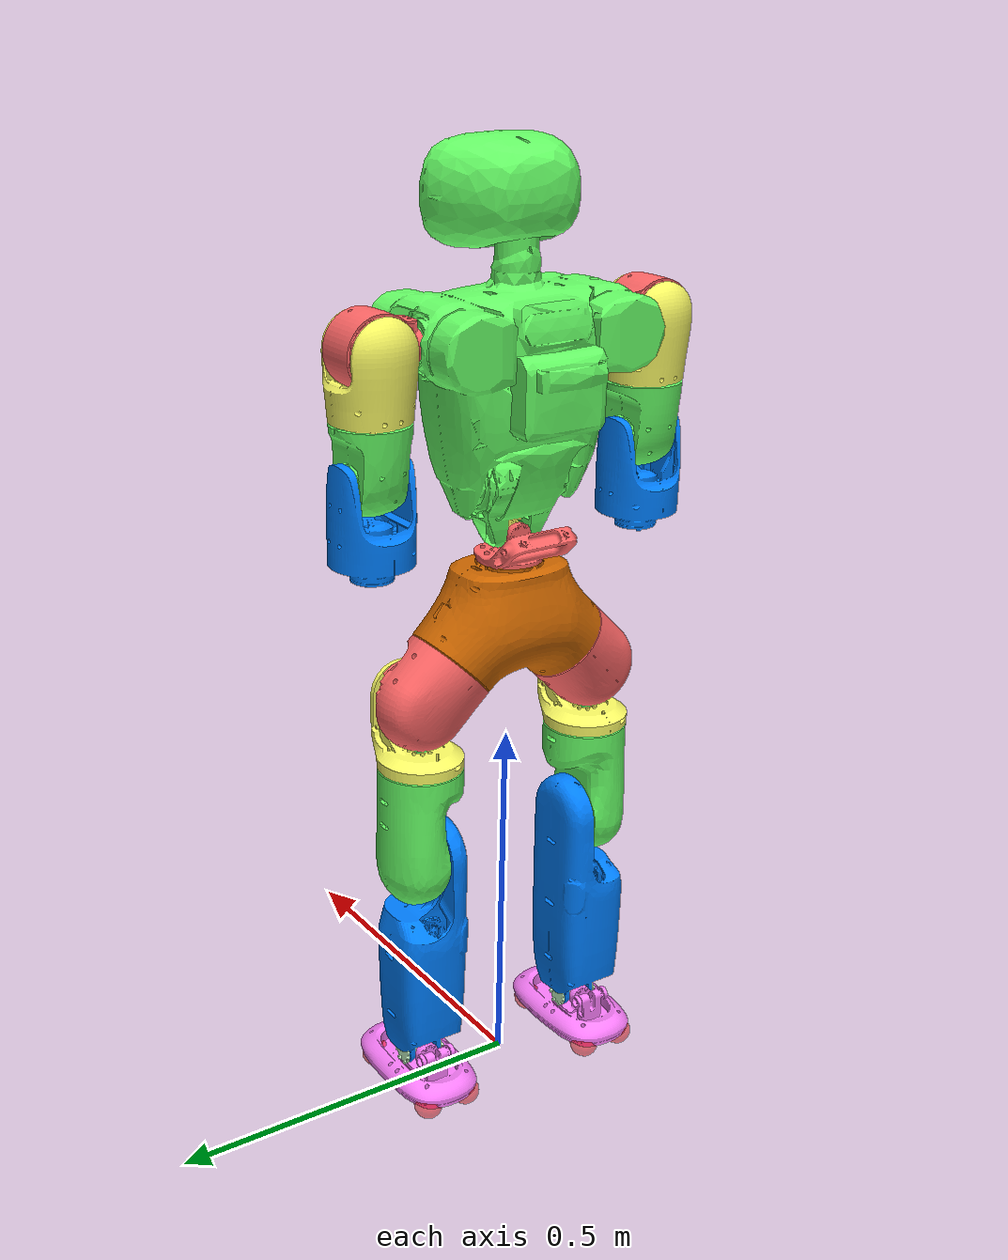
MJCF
<mujoco model="zhiyuan scene">
  <compiler angle='radian' eulerseq="XYZ" meshdir="meshes/"
    autolimits="true" />

  <option timestep="0.001" />

  <visual>
    <global azimuth="150" elevation="-20" />
    <headlight ambient="0.3 0.3 0.3" diffuse="0.6 0.6 0.6" specular="0 0 0" />
    <scale forcewidth="0.03" contactwidth="0.01" contactheight="0.02" com="1" framelength="0.6"
      framewidth="0.05" />
    <rgba haze="0.15 0.25 0.35 1" com="0.502 1 0 0.5" contactpoint="1 1 0.6 0.4"
      contactforce="0.98 0.4 0.4 1" />
  </visual>
  <default>
      <geom contype = "0" conaffinity = "0" solref = "0.005 1" condim = "3" friction = "1 1" />
      <equality solref = "0.005 1" />
      <default class = "zhiyuan">
      </default>
      <default class = "collision">
          <geom contype = "1" group = "3" type = "capsule" />
          <default class = "collision-left">
              <geom contype = "2" conaffinity = "4" />
          </default>
          <default class = "collision-right">
              <geom contype = "4" conaffinity = "2" />
          </default>
      </default>
    </default>
  <asset>
    <mesh name="base_link_simple" file="base_link_simple.STL" />

    <mesh name="body_yaw" file="lumber_yaw.STL" />
    <mesh name="body_roll" file="lumber_roll.STL" />
    <mesh name="body_pitch" file="lumber_pitch.STL" />

    <mesh name="left_shoulder_pitch" file="left_shoulder_pitch.STL" />
    <mesh name="left_shoulder_roll" file="left_shoulder_roll.STL" />
    <mesh name="left_shoulder_yaw" file="left_shoulder_yaw.STL" />
    <mesh name="left_elbow_pitch" file="left_elbow_pitch.STL" />
    <mesh name="left_elbow_yaw" file="left_elbow_yaw.STL" />
    <mesh name="left_wrist_pitch" file="left_wrist_pitch.STL" />
    <mesh name="left_wrist_roll" file="left_wrist_roll.STL" />

    <mesh name="right_shoulder_pitch" file="right_shoulder_pitch.STL" />
    <mesh name="right_shoulder_roll" file="right_shoulder_roll.STL" />
    <mesh name="right_shoulder_yaw" file="right_shoulder_yaw.STL" />
    <mesh name="right_elbow_pitch" file="right_elbow_pitch.STL" />
    <mesh name="right_elbow_yaw" file="right_elbow_yaw.STL" />
    <mesh name="right_wrist_pitch" file="right_wrist_pitch.STL" />
    <mesh name="right_wrist_roll" file="right_wrist_roll.STL" />

    <mesh name="left_hip_pitch" file="left_hip_pitch.STL" />
    <mesh name="left_hip_roll" file="left_hip_roll.STL" />
    <mesh name="left_hip_yaw" file="left_hip_yaw.STL" />
    <mesh name="left_knee_pitch" file="left_knee_pitch.STL" />
    <mesh name="left_ankle_pitch" file="left_ankle_pitch.STL" />
    <mesh name="left_ankle_roll" file="left_ankle_roll.STL" />

    <mesh name="right_hip_pitch" file="right_hip_pitch.STL" />
    <mesh name="right_hip_roll" file="right_hip_roll.STL" />
    <mesh name="right_hip_yaw" file="right_hip_yaw.STL" />
    <mesh name="right_knee_pitch" file="right_knee_pitch.STL" />
    <mesh name="right_ankle_pitch" file="right_ankle_pitch.STL" />
    <mesh name="right_ankle_roll" file="right_ankle_roll.STL" />
  </asset>
  <worldbody>
    <body name = "base_link" pos = "0 0 0.63">
      <inertial pos="0.00252285 -0.00063439 0.03023409" mass="4.3041648" fullinertia="0.02680559 0.01083128 0.02180955 -5.49e-06 5.389e-05  -0.00011229 "/>
      <freejoint name="floating_base"/>
      <geom type="mesh" rgba="0.8 0.4 0 1" mesh="base_link_simple" />
      <geom type="mesh" rgba="0.8 0.4 0 1" mesh="base_link_simple" class = "collision"/>
      <camera name="track" pos="0 -3 1" quat="0.850651 0.525731 0 0" mode="track" />
      <site name = "imu" size = "0.01" pos = "0 0 0" />

      <body name="lumber_yaw_link" pos="0.00245 0 0.115534" quat="1 0 0 -2.27456e-05">
        <inertial pos="-0.0180007 1.4e-06 0.0243298" quat="-7.72625e-06 0.78309 -2.54549e-05 0.621909" mass="0.362519" diaginertia="0.000655093 0.00045823 0.000342457"/>
        <joint name="lumber_yaw_joint" type="hinge" pos="0 0 0" axis="0 0 1" damping="1" range="-3.14 3.14" />
        <geom type='mesh' mesh='body_yaw' pos='0 0 0' euler='-0 0 -0' rgba="1 0.4 0.4 1" />

        <body name="lumber_roll_link" pos="0 0 0.0405" quat="0.5 0.5 -0.5 -0.5">
          <inertial pos="-0.00029919 0.0003642 -0.00019197" quat="0.773215 -0.138631 -0.0225684 0.618394" mass="0.0341207" diaginertia="5.46439e-06 4.90308e-06 4.81253e-06"/>
          <joint name="lumber_roll_joint" type="hinge" pos="0 0 0" axis="1 0 0" damping="1" range="-3.14 3.14" />
          <geom type='mesh' mesh='body_roll' pos='0 0 0' euler='-0 0 -0' rgba="1 1 0.4 1"/>

          <body name="lumber_pitch_link" pos="0 0 0" quat="0.707107 0 0.707107 0">
            <inertial pos="-0.000617851 0.206789 -0.00114246" quat="0.70235 0.7111 -0.0266182 -0.0182289" mass="9.08107" diaginertia="0.154848 0.118223 0.0621153"/>
            <joint name="lumber_pitch_joint" type="hinge" pos="0 0 0" axis="0 1 0" damping="1" range="-3.14 3.14" />
            <geom type='mesh' mesh='body_pitch' pos='0 0 0' rgba="0.4 1 0.4 1" />
            <geom type='mesh' mesh='body_pitch' pos='0 0 0' rgba="0.4 1 0.4 1" class="collision"/>

            <body name="left_shoulder_pitch_link" pos="0 0.256 -0.1458" quat="0 0 0 -1" gravcomp="0">
              <inertial pos="-0.00251212 -0.00149141 -0.0567447" quat="0.995975 -0.00474479 -0.0345991 0.0825443" mass="1.00679" diaginertia="0.00108562 0.000958162 0.000853398"/>
              <joint name="left_shoulder_pitch_joint" type="hinge" pos="0 0 0" axis="0 0 -1" damping="1" range="-3.14 3.14" />
              <geom type='mesh' mesh='left_shoulder_pitch' pos='0 0 0' euler='-0 0 -0'
                rgba="1 0.4 0.4 1" />

              <body name="left_shoulder_roll_link" pos="-0.0313 0 -0.0592" quat="0.707105 0 -0.707108 0" gravcomp="0">
                <inertial pos="0.000154 0.0778464 -0.0271134" quat="0.765297 0.643563 -0.00747942 0.00959688" mass="0.691695" diaginertia="0.00133677 0.00119611 0.000636982"/>
                <joint name="left_shoulder_roll_joint" type="hinge" pos="0 0 0" axis="0 0 -1" damping="1" range="-3.14 3.14" />
                <geom type='mesh' mesh='left_shoulder_roll' pos='0 0 0' euler='-0 0 -0'
                  rgba="1 1 0.4 1" />

                <body name="left_shoulder_yaw_link" pos="0 0.1252 -0.0313" quat="0.5 0.5 0.5 -0.5" gravcomp="0">
                  <inertial pos="-2.68e-06 0.00182113 -0.00392718" quat="0.695603 -0.0321904 0.0318975 0.716996" mass="0.725594" diaginertia="0.00118335 0.00116041 0.000481204"/>
                  <joint name="left_shoulder_yaw_joint" type="hinge" pos="0 0 0" axis="0 0 -1" damping="1" range="-3.14 3.14" />
                  <geom type='mesh' mesh='left_shoulder_yaw' pos='0 0 0' euler='-0 0 -0'
                    rgba="0.4 1 0.4 1" />

                  <body name="left_elbow_pitch_link" pos="0 -0.031 -0.0365" quat="0.707107 -0.707107 0 0" gravcomp="0">
                    <inertial pos="2.604e-05 0.0752824 0.0268658" quat="0.597053 0.802202 -2.17373e-05 0.000362389" mass="0.697801" diaginertia="0.00116267 0.00100065 0.000614359"/>
                    <joint name="left_elbow_pitch_joint" type="hinge" pos="0 0 0" axis="0 0 -1" damping="1" range="-1.0472 2.0944" />
                    <geom type='mesh' mesh='left_elbow_pitch' pos='0 0 0' euler='-0 0 -0'
                      rgba="0 0.5 1 1" />

                  </body>
                </body>
              </body>
            </body>

            <body name="right_shoutlder_pitch_link" pos="0 0.256 0.1458" quat="-3.67321e-06 1 0 0" gravcomp="0">
              <inertial pos="0.00250704 -0.00149173 -0.0567433" quat="0.995977 -0.00568417 0.0346063 -0.0824611" mass="1.00679" diaginertia="0.00108562 0.000958168 0.000853396"/>
              <joint name="right_shoulder_pitch_joint" type="hinge" pos="0 0 0" axis="0 0 1" damping="1" range="-3.14 3.14" />
              <geom type='mesh' mesh='right_shoulder_pitch' pos='0 0 0' euler='-0 0 -0'
                rgba="1 0.4 0.4 1" />

              <body name="right_shoulder_roll_link" pos="0.0313 0 -0.0592" quat="-2.59734e-06 0.707105 2.59735e-06 0.707108" gravcomp="0">
                <inertial pos="9.998e-05 -0.0778724 -0.0270563" quat="0.64355 0.765355 0.0062383 -0.00599871" mass="0.691426" diaginertia="0.00133761 0.00119704 0.000636294"/>
                <joint name="right_shoulder_roll_joint" type="hinge" pos="0 0 0" axis="0 0 1" damping="1" range="-3.14 3.14" />
                <geom type='mesh' mesh='right_shoulder_roll' pos='0 0 0' euler='-0 0 -0'
                  rgba="1 1 0.4 1" />

                <body name="right_shoulder_yaw_link" pos="0 -0.1252 -0.0313" quat="0.707105 0.707108 0 0" gravcomp="0">
                  <inertial pos="-0.00189082 -0.00017102 0.0317511" quat="0.694675 -0.204745 -0.19648 0.660985" mass="0.604503" diaginertia="0.000550567 0.000505158 0.000491905"/>
                  <joint name="right_shoulder_yaw_joint" type="hinge" pos="0 0 0" axis="0 0 1" damping="1" range="-3.14 3.14" />
                  <geom type='mesh' mesh='right_shoulder_yaw' pos='0 0 0' euler='-0 0 -0'
                    rgba="0.4 1 0.4 1" />

                  <body name="right_elbow_pitch_link" pos="-0.031 0 0.0365" quat="0.5 -0.5 0.5 -0.5" gravcomp="0">
                    <inertial pos="-2.604e-05 -0.0752983 0.0268563" quat="0.802034 0.597278 0.000362597 -2.24278e-05" mass="0.697801" diaginertia="0.00116302 0.00100116 0.000614171"/>
                    <joint name="right_elbow_pitch_joint" type="hinge" pos="0 0 0" axis="0 0 1" damping="1" range="-1.0472 2.0944" />
                    <geom type='mesh' mesh='right_elbow_pitch' pos='0 0 0' euler='-0 0 -0'
                      rgba="0 0.5 1 1" />

                  </body>
                </body>
              </body>
            </body>
          </body>
        </body>
      </body>

      <body name="left_hip_pitch_link" pos="0.00245 0.092277 -0.012143" quat="0.65328 0.270599 -0.270598 0.653282" gravcomp="0">
        <inertial pos="-4.816e-05 -0.0107584 -0.0540778" quat="0.701067 -0.0888726 0.120485 0.697202" mass="1.67336" diaginertia="0.00256418 0.00234466 0.00215142"/>
        <joint name="left_hip_pitch_joint" type='hinge' pos="0 0 0" axis="0 0 1" damping='1'
          range="-3.14 3.14" />
        <geom type='mesh' mesh='left_hip_pitch' pos='0 0 0' euler='-0 0 -0' rgba="1 0.4 0.4 1"
        />

        <body name="left_hip_roll_link" pos="0 -0.0405 -0.0589" quat="0.653281 0.653281 0.270598 -0.270598" gravcomp="0">
          <inertial pos="0.00014604 -0.0412348 -0.0101534" quat="0.30122 0.638429 -0.639374 0.304757" mass="0.285622" diaginertia="0.000612958 0.000557294 0.000275288"/>
          <joint name="left_hip_roll_joint" type='hinge' pos="0 0 0" axis="0 0 -1"
            damping='1'
            range="-3.14 3.14" />
          <geom type='mesh' mesh='left_hip_roll' pos='0 0 0' euler='-0 0 -0' rgba="1 1 0.4 1"
          />

          <body name="left_hip_yaw_link" pos="0 -0.0838049 -0.0406" quat="0.707107 0.707107 0 0" gravcomp="0">
            <inertial pos="-0.00212295 -3.062e-05 0.0916484" quat="0.999467 0.000387515 -0.0324521 -0.0035558" mass="2.73696" diaginertia="0.0127474 0.0124495 0.00338744"/>
            <joint name="left_hip_yaw_joint" type='hinge' pos="0 0 0" axis="0 0 -1"
              damping='1'
              range="-3.14 3.14" />
            <geom type='mesh' mesh='left_hip_yaw' pos='0 0 0' euler='-0 0 -0'
              rgba="0.4 1 0.4 1" />

            <body name="left_knee_pitch_link" pos="-0.0337 0 0.1422" quat="0.5 -0.5 0.5 -0.5" gravcomp="0">
              <inertial pos="-0.000466573 -0.136803 0.0283565" quat="0.549096 0.504801 -0.427727 0.510606" mass="1.68649" diaginertia="0.00989796 0.00939201 0.00196477"/>
              <joint name="left_knee_pitch_joint" type='hinge' pos="0 0 0" axis="0 0 1" damping='1'
                range="-3.14 3.14" />
              <geom type='mesh' mesh='left_knee_pitch' pos='0 0 0' euler='-0 0 -0' rgba="0 0.5 1 1"
              />

              <body name="left_ankle_pitch_link" pos="0 -0.30494 0.0336" quat="0 0 -1 0" gravcomp="0">
                <inertial pos="-2.32e-06 7.077e-05 -2.048e-05" quat="0.707107 0 0 0.707107" mass="0.0621721" diaginertia="2.373e-05 2.273e-05 6.68e-06"/>
                <joint name="left_ankle_pitch_joint" type='hinge' pos="0 0 0" axis="0 0 -1"
                  damping='1'
                  range="-3.14 3.14" />
                <geom type='mesh' mesh='left_ankle_pitch' pos='0 0 0' euler='-0 0 -0'
                  rgba="0.8 1.0 0.8 1" />

                <body name="left_ankle_roll_link" pos="0 0 0" quat="0.707107 0 0.707107 0" gravcomp="0">
                  <inertial pos="0.00017156 -0.025247 -0.00019936" quat="0.707585 0.0111979 -0.0139853 0.706401" mass="0.589712" diaginertia="0.00190069 0.00152114 0.000541391"/>
                  <joint name="left_ankle_roll_joint" type='hinge' pos="0 0 0" axis="0 0 1"
                    damping='1'
                    range="-3.14 3.14" />
                  <geom type='mesh' mesh='left_ankle_roll' pos='0 0 0' euler='-0 0 -0'
                    rgba="1 0.5 1 1" />
                  <geom type = "sphere" size = "0.002" pos = "0.03 -0.0408 0.07" class = "collision"  />
                  <geom type = "sphere" size = "0.002" pos = "-0.03 -0.0408 0.07" class = "collision"  />
                  <geom type = "sphere" size = "0.002" pos = "0.03 -0.0408 -0.07" class = "collision"  />
                  <geom type = "sphere" size = "0.002" pos = "-0.03 -0.0408 -0.07" class = "collision"  />
                  <geom type = "sphere" size = "0.02" pos = "0.03 -0.0408 0.07" rgba = "255 0 0 0.5"  />
                  <geom type = "sphere" size = "0.02" pos = "-0.03 -0.0408 0.07" rgba = "255 0 0 0.5"  />
                  <geom type = "sphere" size = "0.02" pos = "0.03 -0.0408 -0.07" rgba = "255 0 0 0.5"  />
                  <geom type = "sphere" size = "0.02" pos = "-0.03 -0.0408 -0.07" rgba = "255 0 0 0.5"  />
                </body>
              </body>
            </body>
          </body>
        </body>
      </body>

      <body name="right_hip_pitch_link" pos="0.00245 -0.092277 -0.012143" quat="0.65328 -0.270599 -0.270598 -0.653282" gravcomp="0">
        <inertial pos="-0.00011915 0.0106148 -0.0540773" quat="0.704635 0.117558 -0.0919818 0.693692" mass="1.66657" diaginertia="0.00254519 0.00232121 0.00213313"/>
        <joint name="right_hip_pitch_joint" type='hinge' pos="0 0 0" axis="0 0 1"
          damping='1'
          range="-3.14 3.14" />
        <geom type='mesh' mesh='right_hip_pitch' pos='0 0 0' euler='-0 0 -0'
          rgba="1 0.4 0.4 1" />

        <body name="right_hip_roll_link" pos="0 0.0405 -0.0589" quat="0.653281 0.653281 0.270598 -0.270598" gravcomp="0">
          <inertial pos="-0.00027058 -0.0416462 0.0103426" quat="0.633195 0.29395 -0.315414 0.642785" mass="0.287688" diaginertia="0.000626566 0.000566795 0.000280389"/>
          <joint name="right_hip_roll_joint" type='hinge' pos="0 0 0" axis="0 0 1"
            damping='1'
            range="-3.14 3.14" />
          <geom type='mesh' mesh='right_hip_roll' pos='0 0 0' euler='-0 0 -0' rgba="1 1 0.4 1"
          />

          <body name="right_hip_yaw_link" pos="0 -0.0777549 0.0406" quat="0.7071 -0.7071 -0.00304418 0.00304418" gravcomp="0">
            <inertial pos="-0.00241642 1.672e-05 -0.097047" quat="0.999478 -0.000259753 0.0322929 -0.00102692" mass="2.69635" diaginertia="0.0125794 0.0122506 0.00332533"/>
            <joint name="right_hip_yaw_joint" type='hinge' pos="0 0 0" axis="0 0 1"
              damping='1'
              range="-3.14 3.14" />
            <geom type='mesh' mesh='right_hip_yaw' pos='0 0 0' euler='-0 0 -0'
              rgba="0.4 1 0.4 1" />

            <body name="right_knee_pitch_link" pos="-0.0347752 0 -0.147956" quat="0.497843 0.502148 0.502148 0.497843" gravcomp="0">
              <inertial pos="0.000491832 -0.13745 0.0283321" quat="0.511647 0.42723 -0.504967 0.548361" mass="1.68377" diaginertia="0.00984174 0.00933685 0.00195957"/>
              <joint name="right_knee_pitch_joint" type='hinge' pos="0 0 0" axis="0 0 -1"
                damping='1'
                range="-3.14 3.14" />
              <geom type='mesh' mesh='right_knee_pitch' pos='0 0 0' euler='-0 0 -0' rgba="0 0.5 1 1"
              />

              <body name="right_ankle_pitch_link" pos="0 -0.30494 0.0336" quat="0 1 0 0" gravcomp="0">
                <inertial pos="2.47e-06 -7.076e-05 -1.763e-05" quat="0.707107 -0.000207363 0.000207363 0.707107" mass="0.0621721" diaginertia="2.373e-05 2.273e-05 6.67999e-06"/>
                <joint name="right_ankle_pitch_joint" type='hinge' pos="0 0 0" axis="0 0 1"
                  damping='1'
                  range="-3.14 3.14" />
                <geom type='mesh' mesh='right_ankle_pitch' pos='0 0 0' euler='-0 0 -0'
                  rgba="0.8 1.0 0.8 1" />

                <body name="right_ankle_roll_link" pos="0 0 0" quat="0.707107 0 0.707107 0" gravcomp="0">
                  <inertial pos="-2.32e-06 0.0250789 0.00010556" quat="0.707007 -0.0123369 0.0123002 0.706992" mass="0.591828" diaginertia="0.00189406 0.00151845 0.00054237"/>
                  <joint name="right_ankle_roll_joint" type='hinge' pos="0 0 0" axis="0 0 1"
                    damping='1'
                    range="-3.14 3.14" />
                  <geom type='mesh' mesh='right_ankle_roll' pos='0 0 0' euler='-0 0 -0'
                    rgba="1 0.5 1 1" />
                  <geom type = "sphere" size = "0.002" pos = "0.03 0.0408 0.07" class = "collision"  />
                  <geom type = "sphere" size = "0.002" pos = "-0.03 0.0408 0.07" class = "collision"  />
                  <geom type = "sphere" size = "0.002" pos = "0.03 0.0408 -0.07" class = "collision"  />
                  <geom type = "sphere" size = "0.002" pos = "-0.03 0.0408 -0.07" class = "collision"  />
                  <geom type = "sphere" size = "0.02" pos = "0.03 0.0408 0.07" rgba = "255 0 0 0.5"  />
                  <geom type = "sphere" size = "0.02" pos = "-0.03 0.0408 0.07" rgba = "255 0 0 0.5"  />
                  <geom type = "sphere" size = "0.02" pos = "0.03 0.0408 -0.07" rgba = "255 0 0 0.5"  />
                  <geom type = "sphere" size = "0.02" pos = "-0.03 0.0408 -0.07" rgba = "255 0 0 0.5"  />
                </body>
              </body>
            </body>
          </body>
        </body>
      </body>
    </body>
  </worldbody>

  <actuator>
    <motor name = 'motor_left_shoulder_pitch' joint = 'left_shoulder_pitch_joint' ctrlrange = '-150 150' />
    <motor name = 'motor_left_shoulder_roll' joint = 'left_shoulder_roll_joint' ctrlrange = '-150 150' />
    <motor name = 'motor_left_shoulder_yaw' joint = 'left_shoulder_yaw_joint' ctrlrange = '-150 150' />
    <motor name = "motor_left_elbow_pitch" joint="left_elbow_pitch_joint" ctrlrange = '-150 150'/>
    <motor name = 'motor_right_shoulder_pitch' joint = 'right_shoulder_pitch_joint' ctrlrange = '-150 150' />
    <motor name = 'motor_right_shoulder_roll' joint = 'right_shoulder_roll_joint' ctrlrange = '-150 150' />
    <motor name = 'motor_right_shoulder_yaw' joint = 'right_shoulder_yaw_joint' ctrlrange = '-150 150' />
    <motor name = "motor_right_elbow_pitch" joint="right_elbow_pitch_joint" ctrlrange = '-150 150'/>

    <motor name = 'motor_left_hip_pitch' joint = 'left_hip_pitch_joint' ctrlrange = '-150 150' />
    <motor name = 'motor_left_hip_roll' joint = 'left_hip_roll_joint' ctrlrange = '-50 50' />
    <motor name = 'motor_left_hip_yaw' joint = 'left_hip_yaw_joint' ctrlrange = '-50 50' />
    <motor name = 'motor_left_knee_pitch' joint = 'left_knee_pitch_joint' ctrlrange = '-150 150' />
    <motor name = 'motor_left_ankle_pitch' joint = 'left_ankle_pitch_joint' ctrlrange = '-18 18' />
    <motor name = 'motor_left_ankle_roll' joint = 'left_ankle_roll_joint' ctrlrange = '-18 18' />

    <motor name = 'motor_right_hip_pitch' joint = 'right_hip_pitch_joint' ctrlrange = '-150 150' />
    <motor name = 'motor_right_hip_roll' joint = 'right_hip_roll_joint' ctrlrange = '-50 50' />
    <motor name = 'motor_right_hip_yaw' joint = 'right_hip_yaw_joint' ctrlrange = '-50 50' />
    <motor name = 'motor_right_knee_pitch' joint = 'right_knee_pitch_joint' ctrlrange = '-150 150' />
    <motor name = 'motor_right_ankle_pitch' joint = 'right_ankle_pitch_joint' ctrlrange = '-18 18' />
    <motor name = 'motor_right_ankle_roll' joint = 'right_ankle_roll_joint' ctrlrange = '-18 18' />

    <motor name="motor_lumber_yaw" joint="lumber_yaw_joint"/>
    <motor name="motor_lumber_roll" joint="lumber_roll_joint"/>
    <motor name="motor_lumber_pitch" joint="lumber_pitch_joint"/>
  </actuator>

  <sensor>
    <!-- imu sensor -->
    <framequat name="body-orientation" objtype="site" objname="imu" noise="0"/>
    <gyro name="body-angular-velocity" site="imu" noise="0.001"/>
    <framepos name="body-linear-pos" objtype="site" objname="imu"/>
    <velocimeter name="body-linear-vel" site="imu"/>
    <accelerometer name="body-linear-acceleration" site="imu" noise="0.001"/>

    <jointpos name = 'jointpos_left_shoulder_pitch' joint = 'left_shoulder_pitch_joint' noise = "0" />
    <jointpos name = 'jointpos_right_shoulder_pitch' joint = 'right_shoulder_pitch_joint' noise = "0" />
    <jointpos name = 'jointpos_left_hip_pitch' joint = 'left_hip_pitch_joint' noise = "0" />
    <jointpos name = 'jointpos_left_hip_roll' joint = 'left_hip_roll_joint' noise = "0" />
    <jointpos name = 'jointpos_left_hip_yaw' joint = 'left_hip_yaw_joint' noise = "0" />
    <jointpos name = 'jointpos_left_knee_pitch' joint = 'left_knee_pitch_joint' noise = "0" />
    <jointpos name = 'jointpos_left_ankle_pitch' joint = 'left_ankle_pitch_joint' noise = "0" />
    <jointpos name = 'jointpos_left_ankle_roll' joint = 'left_ankle_roll_joint' noise = "0" />
    <jointpos name = 'jointpos_right_hip_pitch' joint = 'right_hip_pitch_joint' noise = "0" />
    <jointpos name = 'jointpos_right_hip_roll' joint = 'right_hip_roll_joint' noise = "0" />
    <jointpos name = 'jointpos_right_hip_yaw' joint = 'right_hip_yaw_joint' noise = "0" />
    <jointpos name = 'jointpos_right_knee_pitch' joint = 'right_knee_pitch_joint' noise = "0" />
    <jointpos name = 'jointpos_right_ankle_pitch' joint = 'right_ankle_pitch_joint' noise = "0" />
    <jointpos name = 'jointpos_right_ankle_roll' joint = 'right_ankle_roll_joint' noise = "0" />

    <jointvel name = 'jointvel_left_shoulder_pitch' joint = 'left_shoulder_pitch_joint' noise = "0" />
    <jointvel name = 'jointvel_right_shoulder_pitch' joint = 'right_shoulder_pitch_joint' noise = "0" />
    <jointvel name = 'jointvel_left_hip_pitch' joint = 'left_hip_pitch_joint' noise = "0" />
    <jointvel name = 'jointvel_left_hip_roll' joint = 'left_hip_roll_joint' noise = "0" />
    <jointvel name = 'jointvel_left_hip_yaw' joint = 'left_hip_yaw_joint' noise = "0" />
    <jointvel name = 'jointvel_left_knee_pitch' joint = 'left_knee_pitch_joint' noise = "0" />
    <jointvel name = 'jointvel_left_ankle_pitch' joint = 'left_ankle_pitch_joint' noise = "0" />
    <jointvel name = 'jointvel_left_ankle_roll' joint = 'left_ankle_roll_joint' noise = "0" />
    <jointvel name = 'jointvel_right_hip_pitch' joint = 'right_hip_pitch_joint' noise = "0" />
    <jointvel name = 'jointvel_right_hip_roll' joint = 'right_hip_roll_joint' noise = "0" />
    <jointvel name = 'jointvel_right_hip_yaw' joint = 'right_hip_yaw_joint' noise = "0" />
    <jointvel name = 'jointvel_right_knee_pitch' joint = 'right_knee_pitch_joint' noise = "0" />
    <jointvel name = 'jointvel_right_ankle_pitch' joint = 'right_ankle_pitch_joint' noise = "0" />
    <jointvel name = 'jointvel_right_ankle_roll' joint = 'right_ankle_roll_joint' noise = "0" />
  </sensor>

  <keyframe>
    <key name = "home_default" qpos = "0 0 0.61 1 0 0 0 0.0 0.0 0.0 0.0 0.0 0.0 0.0 0.0 0.0 0.0 0.0 0.0 0.0 -0.0 0.0 -0.0 0. -0.0 -0.0 0.0 0.0 0.0 1.57"/>
  </keyframe>
</mujoco>
